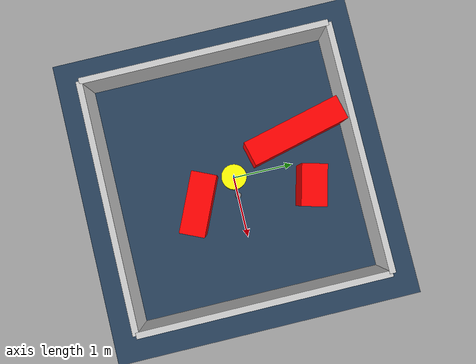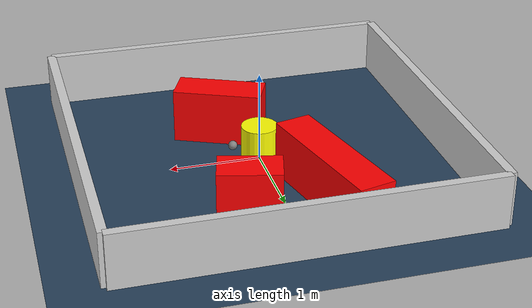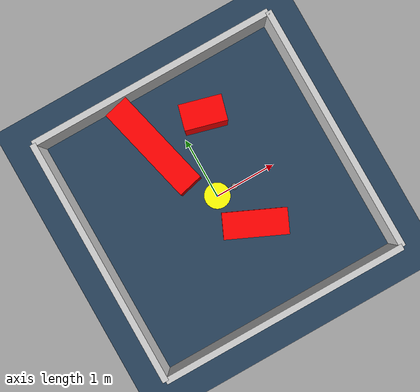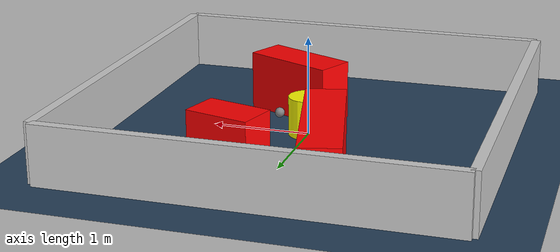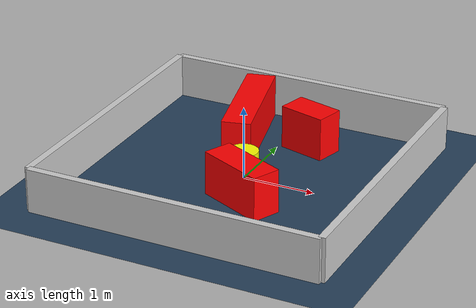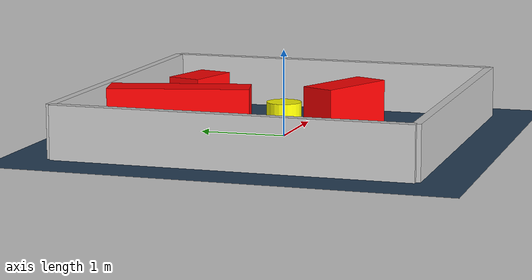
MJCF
<?xml version="1.0" ?>
<mujoco model="generated_environment">
  <option timestep="0.01" integrator="RK4" cone="elliptic"/>
  <default>
    <geom density="1"/>
  </default>
  <asset>
    <texture builtin="gradient" height="3072" rgb1="0.3 0.5 0.7" rgb2="0 0 0" type="skybox" width="512"/>
    <texture builtin="checker" height="300" mark="edge" markrgb="0.8 0.8 0.8" name="groundplane" rgb1="0.2 0.3 0.4" rgb2="0.1 0.2 0.3" type="2d" width="300"/>
    <material name="groundplane" reflectance="0.2" texrepeat="5 5" texture="groundplane" texuniform="true"/>
    <material name="robot" rgba="0.0 1.0 0.0 1"/>
  </asset>
  <worldbody>
    <light dir="0 0 -1" directional="true" pos="0 0 1.5"/>
    <geom condim="4" friction="1.0 0.005 0.001" material="groundplane" name="floor" size="0 0 0.05" type="plane"/>
    <body name="walls">
      <geom name="wall_1" condim="4" pos="-2.0 0.0 0.3" rgba="0.800000011920929 0.800000011920929 0.800000011920929 1.0" size="0.05 2.0 0.3" type="box"/>
      <geom name="wall_2" condim="4" pos="2.0 0.0 0.3" rgba="0.800000011920929 0.800000011920929 0.800000011920929 1.0" size="0.05 2.0 0.3" type="box"/>
      <geom name="wall_3" condim="4" pos="0.0 -2.0 0.3" rgba="0.800000011920929 0.800000011920929 0.800000011920929 1.0" size="2.0 0.05 0.3" type="box"/>
      <geom name="wall_4" condim="4" pos="0.0 2.0 0.3" rgba="0.800000011920929 0.800000011920929 0.800000011920929 1.0" size="2.0 0.05 0.3" type="box"/>
    </body>
    <body name="robot">
      <joint name="joint_x" type="slide" pos="0 0 0" axis="1 0 0"/>
      <joint name="joint_y" type="slide" pos="0 0 0" axis="0 1 0"/>
      <geom name="robot" type="sphere" pos="0.3 0.0 0.2" size="0.05" mass="5." friction="1.0 0.005 0.0001" condim="4" rgba="0.5 0.5 0.5 1.0"/>
      <site name="sensor_ball"/>
    </body>
    <body name="obstacle_movable_1">
      <geom name="obstacle_movable_1" condim="4" pos="0.0 0.0 0.2" euler="0 0 0.0" friction="1.0 0.005 0.001" rgba="1.0 1.0 0.0 1.0" size="0.2 0.2 0.0" type="cylinder" mass="0.1"/>
      <joint type="free"/>
    </body>
    <body name="obstacle_2_static">
      <geom name="obstacle_2_static" condim="4" pos="0.28653395748263244 -0.6369152295519867 0.3" euler="0 0 155.64721471996245" friction="1.0 0.005 0.001" rgba="1 0 0 1" size="0.4881643358982854 0.2 0.3" type="box"/>
    </body>
    <body name="obstacle_3_static">
      <geom name="obstacle_3_static" condim="4" pos="0.4188174243146843 1.1702180441232921 0.3" euler="0 0 345.10172245076956" friction="1.0 0.005 0.001" rgba="1 0 0 1" size="0.33108903405643036 0.2 0.3" type="box"/>
    </body>
    <body name="obstacle_4_static">
      <geom name="obstacle_4_static" condim="4" pos="-0.4660139603989959 1.099371801294134 0.3" euler="0 0 283.84863155353077" friction="1.0 0.005 0.001" rgba="1 0 0 1" size="0.8058232697927197 0.2 0.3" type="box"/>
    </body>
  </worldbody>
  <actuator>
    <motor name="actuator_x" joint="joint_x" gear="1" ctrlrange="-1 1"/>
    <motor name="actuator_y" joint="joint_y" gear="1" ctrlrange="-1 1"/>
  </actuator>
</mujoco>
